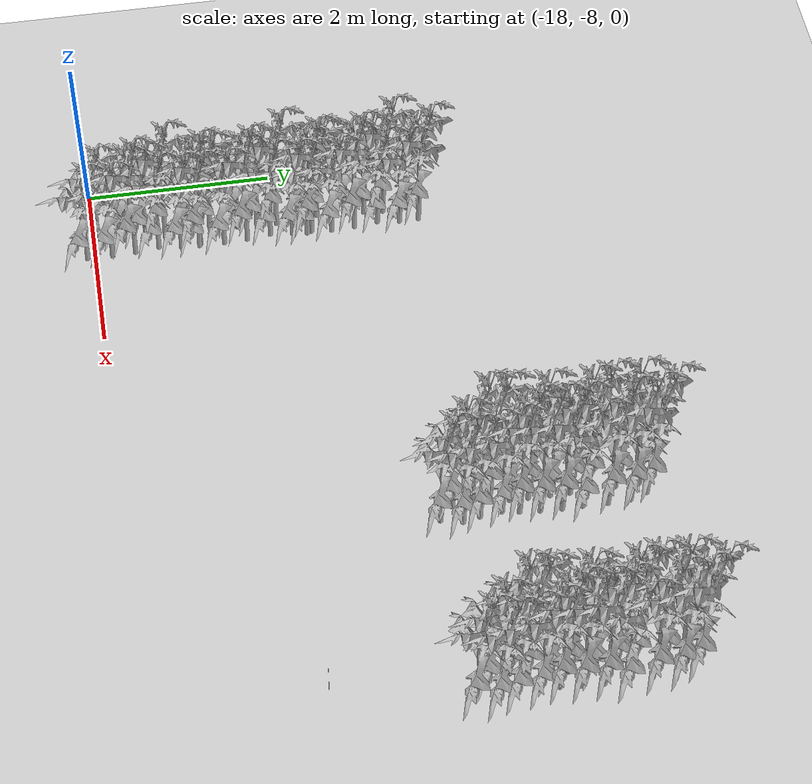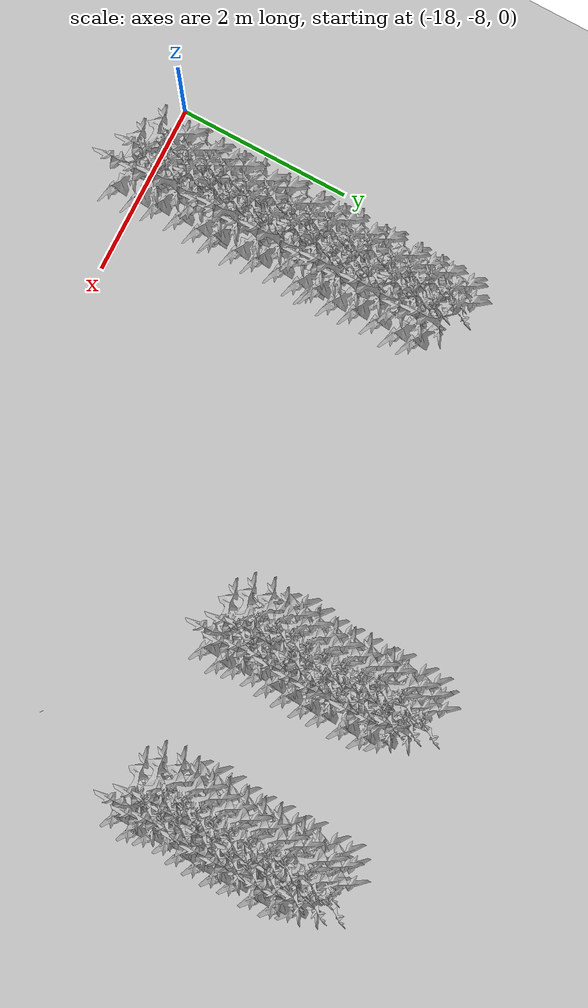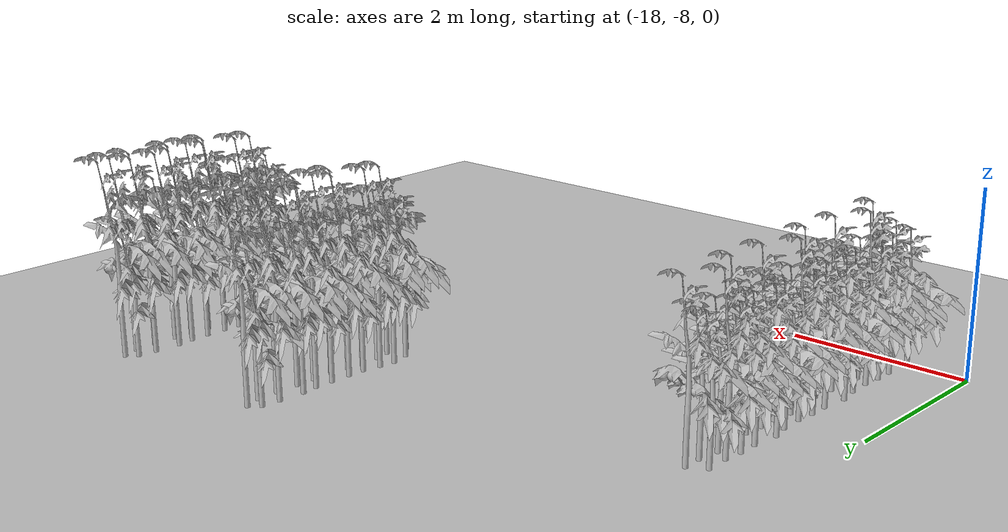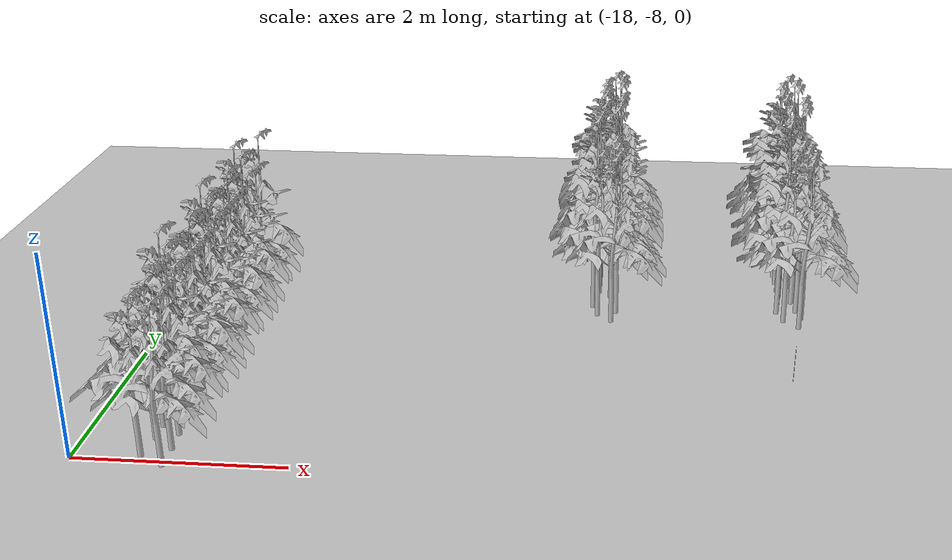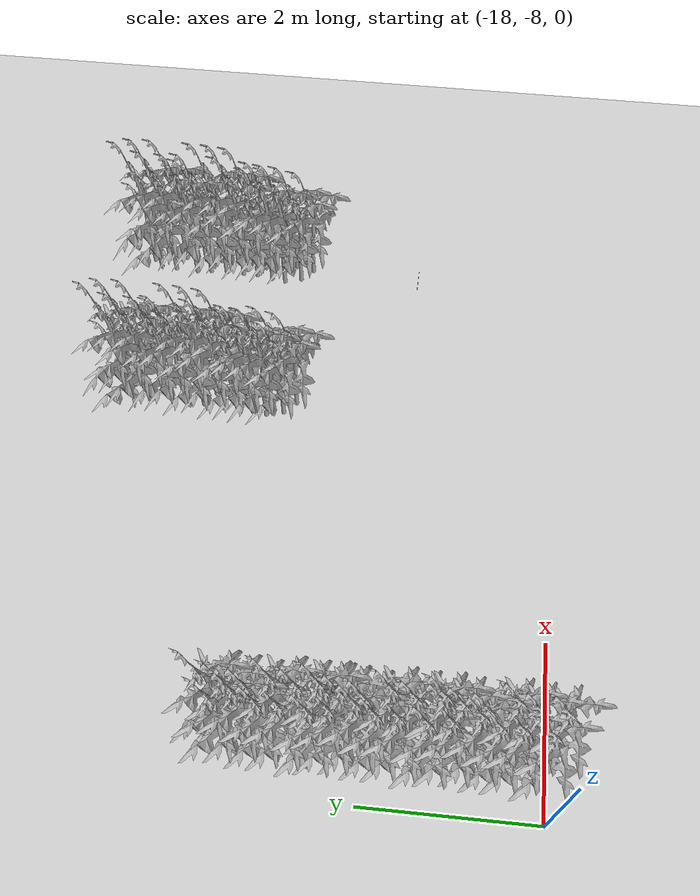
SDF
<sdf version="1.6">
 <world name="default">
  <model name="ground_plane">
   <static>1</static>
   <link name="link">
    <collision name="collision">
     <geometry><plane><normal>0 0 1</normal><size>100 100</size></plane></geometry>
     <surface>
      <contact><collide_bitmask>65535</collide_bitmask></contact>
      <friction><ode><mu>100</mu><mu2>50</mu2></ode></friction>
     </surface>
    </collision>
    <visual name="visual">
     <cast_shadows>0</cast_shadows>
     <geometry><plane><normal>0 0 1</normal><size>100 100</size></plane></geometry>
     <material>
      <script><uri>file://media/materials/scripts/gazebo.material</uri><name>Gazebo/Grey</name></script>
     </material>
    </visual>
   </link>
  </model>
  <model name="Front_Plant_1_5">
   <model name="tomato_plant_medium">
    <static>1</static>
    <link name="link">
     <collision name="collision">
      <pose>0 0 0 1.5708 -0 0</pose>
      <geometry><mesh><scale>0.5 0.5 0.5</scale><uri>model://stick/meshes/stick.dae</uri></mesh></geometry>
     </collision>
     <visual name="visual">
      <geometry>
       <mesh><scale>5e-06 5e-06 6e-06</scale><uri>model://tomato_plant_medium/meshes/tomato-plant.dae</uri></mesh>
      </geometry>
     </visual>
    </link>
    <pose>0.087453 -0.595994 0.012396 0 -0 0</pose>
   </model>
   <model name="tomato_plant_medium_0">
    <static>1</static>
    <link name="link">
     <collision name="collision">
      <pose>0 0 0 1.5708 -0 0</pose>
      <geometry><mesh><scale>0.5 0.5 0.5</scale><uri>model://stick/meshes/stick.dae</uri></mesh></geometry>
     </collision>
     <visual name="visual">
      <geometry>
       <mesh><scale>5e-06 5e-06 6e-06</scale><uri>model://tomato_plant_medium/meshes/tomato-plant.dae</uri></mesh>
      </geometry>
     </visual>
    </link>
    <pose>-0.086166 -0.251822 0.012396 0 -0 0</pose>
   </model>
   <model name="tomato_plant_medium_1">
    <static>1</static>
    <link name="link">
     <collision name="collision">
      <pose>0 0 0 1.5708 -0 0</pose>
      <geometry><mesh><scale>0.5 0.5 0.5</scale><uri>model://stick/meshes/stick.dae</uri></mesh></geometry>
     </collision>
     <visual name="visual">
      <geometry>
       <mesh><scale>5e-06 5e-06 6e-06</scale><uri>model://tomato_plant_medium/meshes/tomato-plant.dae</uri></mesh>
      </geometry>
     </visual>
    </link>
    <pose>0.080199 0.118127 0.012396 0 -0 0</pose>
   </model>
   <model name="tomato_plant_small">
    <static>1</static>
    <link name="link">
     <collision name="collision">
      <pose>0 0 0 1.5708 -0 0</pose>
      <geometry><mesh><scale>0.5 0.45 0.5</scale><uri>model://stick/meshes/stick.dae</uri></mesh></geometry>
     </collision>
     <visual name="visual">
      <geometry>
       <mesh><scale>5e-06 5e-06 5e-06</scale><uri>model://tomato_plant_small/meshes/tomato-plant.dae</uri></mesh>
      </geometry>
     </visual>
    </link>
    <pose>0.099683 -1.12011 0.012396 0 -0 0</pose>
   </model>
   <model name="tomato_plant_small_0">
    <static>1</static>
    <link name="link">
     <collision name="collision">
      <pose>0 0 0 1.5708 -0 0</pose>
      <geometry><mesh><scale>0.5 0.45 0.5</scale><uri>model://stick/meshes/stick.dae</uri></mesh></geometry>
     </collision>
     <visual name="visual">
      <geometry>
       <mesh><scale>5e-06 5e-06 5e-06</scale><uri>model://tomato_plant_small/meshes/tomato-plant.dae</uri></mesh>
      </geometry>
     </visual>
    </link>
    <pose>-0.138771 -0.983982 0.012396 0 -0 0</pose>
   </model>
   <model name="tomato_plant_small_1">
    <static>1</static>
    <link name="link">
     <collision name="collision">
      <pose>0 0 0 1.5708 -0 0</pose>
      <geometry><mesh><scale>0.5 0.45 0.5</scale><uri>model://stick/meshes/stick.dae</uri></mesh></geometry>
     </collision>
     <visual name="visual">
      <geometry>
       <mesh><scale>5e-06 5e-06 5e-06</scale><uri>model://tomato_plant_small/meshes/tomato-plant.dae</uri></mesh>
      </geometry>
     </visual>
    </link>
    <pose>0.101334 -0.848814 0.012396 0 -0 0</pose>
   </model>
   <model name="tomato_plant_small_2">
    <static>1</static>
    <link name="link">
     <collision name="collision">
      <pose>0 0 0 1.5708 -0 0</pose>
      <geometry><mesh><scale>0.5 0.45 0.5</scale><uri>model://stick/meshes/stick.dae</uri></mesh></geometry>
     </collision>
     <visual name="visual">
      <geometry>
       <mesh><scale>5e-06 5e-06 5e-06</scale><uri>model://tomato_plant_small/meshes/tomato-plant.dae</uri></mesh>
      </geometry>
     </visual>
    </link>
    <pose>-0.103369 -0.683189 0.012396 0 -0 0</pose>
   </model>
   <model name="tomato_plant_small_3">
    <static>1</static>
    <link name="link">
     <collision name="collision">
      <pose>0 0 0 1.5708 -0 0</pose>
      <geometry><mesh><scale>0.5 0.45 0.5</scale><uri>model://stick/meshes/stick.dae</uri></mesh></geometry>
     </collision>
     <visual name="visual">
      <geometry>
       <mesh><scale>5e-06 5e-06 5e-06</scale><uri>model://tomato_plant_small/meshes/tomato-plant.dae</uri></mesh>
      </geometry>
     </visual>
    </link>
    <pose>-0.104381 -0.464811 0.012396 0 -0 0</pose>
   </model>
   <model name="tomato_plant_small_4">
    <static>1</static>
    <link name="link">
     <collision name="collision">
      <pose>0 0 0 1.5708 -0 0</pose>
      <geometry><mesh><scale>0.5 0.45 0.5</scale><uri>model://stick/meshes/stick.dae</uri></mesh></geometry>
     </collision>
     <visual name="visual">
      <geometry>
       <mesh><scale>5e-06 5e-06 5e-06</scale><uri>model://tomato_plant_small/meshes/tomato-plant.dae</uri></mesh>
      </geometry>
     </visual>
    </link>
    <pose>0.055604 -0.336879 0.012396 0 -0 0</pose>
   </model>
   <model name="tomato_plant_small_5">
    <static>1</static>
    <link name="link">
     <collision name="collision">
      <pose>0 0 0 1.5708 -0 0</pose>
      <geometry><mesh><scale>0.5 0.45 0.5</scale><uri>model://stick/meshes/stick.dae</uri></mesh></geometry>
     </collision>
     <visual name="visual">
      <geometry>
       <mesh><scale>5e-06 5e-06 5e-06</scale><uri>model://tomato_plant_small/meshes/tomato-plant.dae</uri></mesh>
      </geometry>
     </visual>
    </link>
    <pose>0.085059 -0.092572 0.012396 0 -0 0</pose>
   </model>
   <model name="tomato_plant_small_6">
    <static>1</static>
    <link name="link">
     <collision name="collision">
      <pose>0 0 0 1.5708 -0 0</pose>
      <geometry><mesh><scale>0.5 0.45 0.5</scale><uri>model://stick/meshes/stick.dae</uri></mesh></geometry>
     </collision>
     <visual name="visual">
      <geometry>
       <mesh><scale>5e-06 5e-06 5e-06</scale><uri>model://tomato_plant_small/meshes/tomato-plant.dae</uri></mesh>
      </geometry>
     </visual>
    </link>
    <pose>-0.096345 0.008888 0.012396 0 -0 0</pose>
   </model>
   <static>0</static>
   <pose>-17.2096 -6.97996 0 0 -0 0</pose>
  </model>
  <model name="Front_Plant_1_6">
   <model name="tomato_plant_medium">
    <static>1</static>
    <link name="link">
     <collision name="collision">
      <pose>0 0 0 1.5708 -0 0</pose>
      <geometry><mesh><scale>0.5 0.5 0.5</scale><uri>model://stick/meshes/stick.dae</uri></mesh></geometry>
     </collision>
     <visual name="visual">
      <geometry>
       <mesh><scale>5e-06 5e-06 6e-06</scale><uri>model://tomato_plant_medium/meshes/tomato-plant.dae</uri></mesh>
      </geometry>
     </visual>
    </link>
    <pose>0.087453 -0.595994 0.012396 0 -0 0</pose>
   </model>
   <model name="tomato_plant_medium_0">
    <static>1</static>
    <link name="link">
     <collision name="collision">
      <pose>0 0 0 1.5708 -0 0</pose>
      <geometry><mesh><scale>0.5 0.5 0.5</scale><uri>model://stick/meshes/stick.dae</uri></mesh></geometry>
     </collision>
     <visual name="visual">
      <geometry>
       <mesh><scale>5e-06 5e-06 6e-06</scale><uri>model://tomato_plant_medium/meshes/tomato-plant.dae</uri></mesh>
      </geometry>
     </visual>
    </link>
    <pose>-0.086166 -0.251822 0.012396 0 -0 0</pose>
   </model>
   <model name="tomato_plant_medium_1">
    <static>1</static>
    <link name="link">
     <collision name="collision">
      <pose>0 0 0 1.5708 -0 0</pose>
      <geometry><mesh><scale>0.5 0.5 0.5</scale><uri>model://stick/meshes/stick.dae</uri></mesh></geometry>
     </collision>
     <visual name="visual">
      <geometry>
       <mesh><scale>5e-06 5e-06 6e-06</scale><uri>model://tomato_plant_medium/meshes/tomato-plant.dae</uri></mesh>
      </geometry>
     </visual>
    </link>
    <pose>0.080199 0.118127 0.012396 0 -0 0</pose>
   </model>
   <model name="tomato_plant_small">
    <static>1</static>
    <link name="link">
     <collision name="collision">
      <pose>0 0 0 1.5708 -0 0</pose>
      <geometry><mesh><scale>0.5 0.45 0.5</scale><uri>model://stick/meshes/stick.dae</uri></mesh></geometry>
     </collision>
     <visual name="visual">
      <geometry>
       <mesh><scale>5e-06 5e-06 5e-06</scale><uri>model://tomato_plant_small/meshes/tomato-plant.dae</uri></mesh>
      </geometry>
     </visual>
    </link>
    <pose>0.099683 -1.12011 0.012396 0 -0 0</pose>
   </model>
   <model name="tomato_plant_small_0">
    <static>1</static>
    <link name="link">
     <collision name="collision">
      <pose>0 0 0 1.5708 -0 0</pose>
      <geometry><mesh><scale>0.5 0.45 0.5</scale><uri>model://stick/meshes/stick.dae</uri></mesh></geometry>
     </collision>
     <visual name="visual">
      <geometry>
       <mesh><scale>5e-06 5e-06 5e-06</scale><uri>model://tomato_plant_small/meshes/tomato-plant.dae</uri></mesh>
      </geometry>
     </visual>
    </link>
    <pose>-0.138771 -0.983982 0.012396 0 -0 0</pose>
   </model>
   <model name="tomato_plant_small_1">
    <static>1</static>
    <link name="link">
     <collision name="collision">
      <pose>0 0 0 1.5708 -0 0</pose>
      <geometry><mesh><scale>0.5 0.45 0.5</scale><uri>model://stick/meshes/stick.dae</uri></mesh></geometry>
     </collision>
     <visual name="visual">
      <geometry>
       <mesh><scale>5e-06 5e-06 5e-06</scale><uri>model://tomato_plant_small/meshes/tomato-plant.dae</uri></mesh>
      </geometry>
     </visual>
    </link>
    <pose>0.101334 -0.848814 0.012396 0 -0 0</pose>
   </model>
   <model name="tomato_plant_small_2">
    <static>1</static>
    <link name="link">
     <collision name="collision">
      <pose>0 0 0 1.5708 -0 0</pose>
      <geometry><mesh><scale>0.5 0.45 0.5</scale><uri>model://stick/meshes/stick.dae</uri></mesh></geometry>
     </collision>
     <visual name="visual">
      <geometry>
       <mesh><scale>5e-06 5e-06 5e-06</scale><uri>model://tomato_plant_small/meshes/tomato-plant.dae</uri></mesh>
      </geometry>
     </visual>
    </link>
    <pose>-0.103369 -0.683189 0.012396 0 -0 0</pose>
   </model>
   <model name="tomato_plant_small_3">
    <static>1</static>
    <link name="link">
     <collision name="collision">
      <pose>0 0 0 1.5708 -0 0</pose>
      <geometry><mesh><scale>0.5 0.45 0.5</scale><uri>model://stick/meshes/stick.dae</uri></mesh></geometry>
     </collision>
     <visual name="visual">
      <geometry>
       <mesh><scale>5e-06 5e-06 5e-06</scale><uri>model://tomato_plant_small/meshes/tomato-plant.dae</uri></mesh>
      </geometry>
     </visual>
    </link>
    <pose>-0.104381 -0.464811 0.012396 0 -0 0</pose>
   </model>
   <model name="tomato_plant_small_4">
    <static>1</static>
    <link name="link">
     <collision name="collision">
      <pose>0 0 0 1.5708 -0 0</pose>
      <geometry><mesh><scale>0.5 0.45 0.5</scale><uri>model://stick/meshes/stick.dae</uri></mesh></geometry>
     </collision>
     <visual name="visual">
      <geometry>
       <mesh><scale>5e-06 5e-06 5e-06</scale><uri>model://tomato_plant_small/meshes/tomato-plant.dae</uri></mesh>
      </geometry>
     </visual>
    </link>
    <pose>0.055604 -0.336879 0.012396 0 -0 0</pose>
   </model>
   <model name="tomato_plant_small_5">
    <static>1</static>
    <link name="link">
     <collision name="collision">
      <pose>0 0 0 1.5708 -0 0</pose>
      <geometry><mesh><scale>0.5 0.45 0.5</scale><uri>model://stick/meshes/stick.dae</uri></mesh></geometry>
     </collision>
     <visual name="visual">
      <geometry>
       <mesh><scale>5e-06 5e-06 5e-06</scale><uri>model://tomato_plant_small/meshes/tomato-plant.dae</uri></mesh>
      </geometry>
     </visual>
    </link>
    <pose>0.085059 -0.092572 0.012396 0 -0 0</pose>
   </model>
   <model name="tomato_plant_small_6">
    <static>1</static>
    <link name="link">
     <collision name="collision">
      <pose>0 0 0 1.5708 -0 0</pose>
      <geometry><mesh><scale>0.5 0.45 0.5</scale><uri>model://stick/meshes/stick.dae</uri></mesh></geometry>
     </collision>
     <visual name="visual">
      <geometry>
       <mesh><scale>5e-06 5e-06 5e-06</scale><uri>model://tomato_plant_small/meshes/tomato-plant.dae</uri></mesh>
      </geometry>
     </visual>
    </link>
    <pose>-0.096345 0.008888 0.012396 0 -0 0</pose>
   </model>
   <static>0</static>
   <pose>-17.2096 -5.75271 0 0 -0 0</pose>
  </model>
  <model name="Front_Plant_1_7">
   <model name="tomato_plant_medium">
    <static>1</static>
    <link name="link">
     <collision name="collision">
      <pose>0 0 0 1.5708 -0 0</pose>
      <geometry><mesh><scale>0.5 0.5 0.5</scale><uri>model://stick/meshes/stick.dae</uri></mesh></geometry>
     </collision>
     <visual name="visual">
      <geometry>
       <mesh><scale>5e-06 5e-06 6e-06</scale><uri>model://tomato_plant_medium/meshes/tomato-plant.dae</uri></mesh>
      </geometry>
     </visual>
    </link>
    <pose>0.087453 -0.595994 0.012396 0 -0 0</pose>
   </model>
   <model name="tomato_plant_medium_0">
    <static>1</static>
    <link name="link">
     <collision name="collision">
      <pose>0 0 0 1.5708 -0 0</pose>
      <geometry><mesh><scale>0.5 0.5 0.5</scale><uri>model://stick/meshes/stick.dae</uri></mesh></geometry>
     </collision>
     <visual name="visual">
      <geometry>
       <mesh><scale>5e-06 5e-06 6e-06</scale><uri>model://tomato_plant_medium/meshes/tomato-plant.dae</uri></mesh>
      </geometry>
     </visual>
    </link>
    <pose>-0.086166 -0.251822 0.012396 0 -0 0</pose>
   </model>
   <model name="tomato_plant_medium_1">
    <static>1</static>
    <link name="link">
     <collision name="collision">
      <pose>0 0 0 1.5708 -0 0</pose>
      <geometry><mesh><scale>0.5 0.5 0.5</scale><uri>model://stick/meshes/stick.dae</uri></mesh></geometry>
     </collision>
     <visual name="visual">
      <geometry>
       <mesh><scale>5e-06 5e-06 6e-06</scale><uri>model://tomato_plant_medium/meshes/tomato-plant.dae</uri></mesh>
      </geometry>
     </visual>
    </link>
    <pose>0.080199 0.118127 0.012396 0 -0 0</pose>
   </model>
   <model name="tomato_plant_small">
    <static>1</static>
    <link name="link">
     <collision name="collision">
      <pose>0 0 0 1.5708 -0 0</pose>
      <geometry><mesh><scale>0.5 0.45 0.5</scale><uri>model://stick/meshes/stick.dae</uri></mesh></geometry>
     </collision>
     <visual name="visual">
      <geometry>
       <mesh><scale>5e-06 5e-06 5e-06</scale><uri>model://tomato_plant_small/meshes/tomato-plant.dae</uri></mesh>
      </geometry>
     </visual>
    </link>
    <pose>0.099683 -1.12011 0.012396 0 -0 0</pose>
   </model>
   <model name="tomato_plant_small_0">
    <static>1</static>
    <link name="link">
     <collision name="collision">
      <pose>0 0 0 1.5708 -0 0</pose>
      <geometry><mesh><scale>0.5 0.45 0.5</scale><uri>model://stick/meshes/stick.dae</uri></mesh></geometry>
     </collision>
     <visual name="visual">
      <geometry>
       <mesh><scale>5e-06 5e-06 5e-06</scale><uri>model://tomato_plant_small/meshes/tomato-plant.dae</uri></mesh>
      </geometry>
     </visual>
    </link>
    <pose>-0.138771 -0.983982 0.012396 0 -0 0</pose>
   </model>
   <model name="tomato_plant_small_1">
    <static>1</static>
    <link name="link">
     <collision name="collision">
      <pose>0 0 0 1.5708 -0 0</pose>
      <geometry><mesh><scale>0.5 0.45 0.5</scale><uri>model://stick/meshes/stick.dae</uri></mesh></geometry>
     </collision>
     <visual name="visual">
      <geometry>
       <mesh><scale>5e-06 5e-06 5e-06</scale><uri>model://tomato_plant_small/meshes/tomato-plant.dae</uri></mesh>
      </geometry>
     </visual>
    </link>
    <pose>0.101334 -0.848814 0.012396 0 -0 0</pose>
   </model>
   <model name="tomato_plant_small_2">
    <static>1</static>
    <link name="link">
     <collision name="collision">
      <pose>0 0 0 1.5708 -0 0</pose>
      <geometry><mesh><scale>0.5 0.45 0.5</scale><uri>model://stick/meshes/stick.dae</uri></mesh></geometry>
     </collision>
     <visual name="visual">
      <geometry>
       <mesh><scale>5e-06 5e-06 5e-06</scale><uri>model://tomato_plant_small/meshes/tomato-plant.dae</uri></mesh>
      </geometry>
     </visual>
    </link>
    <pose>-0.103369 -0.683189 0.012396 0 -0 0</pose>
   </model>
   <model name="tomato_plant_small_3">
    <static>1</static>
    <link name="link">
     <collision name="collision">
      <pose>0 0 0 1.5708 -0 0</pose>
      <geometry><mesh><scale>0.5 0.45 0.5</scale><uri>model://stick/meshes/stick.dae</uri></mesh></geometry>
     </collision>
     <visual name="visual">
      <geometry>
       <mesh><scale>5e-06 5e-06 5e-06</scale><uri>model://tomato_plant_small/meshes/tomato-plant.dae</uri></mesh>
      </geometry>
     </visual>
    </link>
    <pose>-0.104381 -0.464811 0.012396 0 -0 0</pose>
   </model>
   <model name="tomato_plant_small_4">
    <static>1</static>
    <link name="link">
     <collision name="collision">
      <pose>0 0 0 1.5708 -0 0</pose>
      <geometry><mesh><scale>0.5 0.45 0.5</scale><uri>model://stick/meshes/stick.dae</uri></mesh></geometry>
     </collision>
     <visual name="visual">
      <geometry>
       <mesh><scale>5e-06 5e-06 5e-06</scale><uri>model://tomato_plant_small/meshes/tomato-plant.dae</uri></mesh>
      </geometry>
     </visual>
    </link>
    <pose>0.055604 -0.336879 0.012396 0 -0 0</pose>
   </model>
   <model name="tomato_plant_small_5">
    <static>1</static>
    <link name="link">
     <collision name="collision">
      <pose>0 0 0 1.5708 -0 0</pose>
      <geometry><mesh><scale>0.5 0.45 0.5</scale><uri>model://stick/meshes/stick.dae</uri></mesh></geometry>
     </collision>
     <visual name="visual">
      <geometry>
       <mesh><scale>5e-06 5e-06 5e-06</scale><uri>model://tomato_plant_small/meshes/tomato-plant.dae</uri></mesh>
      </geometry>
     </visual>
    </link>
    <pose>0.085059 -0.092572 0.012396 0 -0 0</pose>
   </model>
   <model name="tomato_plant_small_6">
    <static>1</static>
    <link name="link">
     <collision name="collision">
      <pose>0 0 0 1.5708 -0 0</pose>
      <geometry><mesh><scale>0.5 0.45 0.5</scale><uri>model://stick/meshes/stick.dae</uri></mesh></geometry>
     </collision>
     <visual name="visual">
      <geometry>
       <mesh><scale>5e-06 5e-06 5e-06</scale><uri>model://tomato_plant_small/meshes/tomato-plant.dae</uri></mesh>
      </geometry>
     </visual>
    </link>
    <pose>-0.096345 0.008888 0.012396 0 -0 0</pose>
   </model>
   <static>0</static>
   <pose>-17.2096 -4.56415 0 0 -0 0</pose>
  </model>
  <model name="MIddle_Plant_1_0">
   <model name="tomato_plant_big">
    <static>1</static>
    <link name="link">
     <collision name="collision">
      <pose>0 0 0 1.5708 -0 0</pose>
      <geometry><mesh><scale>0.5 0.6 0.5</scale><uri>model://stick/meshes/stick.dae</uri></mesh></geometry>
     </collision>
     <visual name="visual">
      <geometry>
       <mesh><scale>5e-06 5e-06 7e-06</scale><uri>model://tomato_plant_big/meshes/tomato-plant.dae</uri></mesh>
      </geometry>
     </visual>
    </link>
    <pose>-0.144318 -0.693607 -0 0 -0 0</pose>
   </model>
   <model name="tomato_plant_big_0">
    <static>1</static>
    <link name="link">
     <collision name="collision">
      <pose>0 0 0 1.5708 -0 0</pose>
      <geometry><mesh><scale>0.5 0.6 0.5</scale><uri>model://stick/meshes/stick.dae</uri></mesh></geometry>
     </collision>
     <visual name="visual">
      <geometry>
       <mesh><scale>5e-06 5e-06 7e-06</scale><uri>model://tomato_plant_big/meshes/tomato-plant.dae</uri></mesh>
      </geometry>
     </visual>
    </link>
    <pose>-0.11784 -0.519827 0 0 -0 0</pose>
   </model>
   <model name="tomato_plant_big_1">
    <static>1</static>
    <link name="link">
     <collision name="collision">
      <pose>0 0 0 1.5708 -0 0</pose>
      <geometry><mesh><scale>0.5 0.6 0.5</scale><uri>model://stick/meshes/stick.dae</uri></mesh></geometry>
     </collision>
     <visual name="visual">
      <geometry>
       <mesh><scale>5e-06 5e-06 7e-06</scale><uri>model://tomato_plant_big/meshes/tomato-plant.dae</uri></mesh>
      </geometry>
     </visual>
    </link>
    <pose>0.073755 -0.247584 0 0 -0 0</pose>
   </model>
   <model name="tomato_plant_big_10">
    <static>1</static>
    <link name="link">
     <collision name="collision">
      <pose>0 0 0 1.5708 -0 0</pose>
      <geometry><mesh><scale>0.5 0.6 0.5</scale><uri>model://stick/meshes/stick.dae</uri></mesh></geometry>
     </collision>
     <visual name="visual">
      <geometry>
       <mesh><scale>5e-06 5e-06 7e-06</scale><uri>model://tomato_plant_big/meshes/tomato-plant.dae</uri></mesh>
      </geometry>
     </visual>
    </link>
    <pose>0.037052 1.07094 0 0 -0 0</pose>
   </model>
   <model name="tomato_plant_big_2">
    <static>1</static>
    <link name="link">
     <collision name="collision">
      <pose>0 0 0 1.5708 -0 0</pose>
      <geometry><mesh><scale>0.5 0.6 0.5</scale><uri>model://stick/meshes/stick.dae</uri></mesh></geometry>
     </collision>
     <visual name="visual">
      <geometry>
       <mesh><scale>5e-06 5e-06 7e-06</scale><uri>model://tomato_plant_big/meshes/tomato-plant.dae</uri></mesh>
      </geometry>
     </visual>
    </link>
    <pose>-0.076926 -0.131165 0 0 -0 0</pose>
   </model>
   <model name="tomato_plant_big_3">
    <static>1</static>
    <link name="link">
     <collision name="collision">
      <pose>0 0 0 1.5708 -0 0</pose>
      <geometry><mesh><scale>0.5 0.6 0.5</scale><uri>model://stick/meshes/stick.dae</uri></mesh></geometry>
     </collision>
     <visual name="visual">
      <geometry>
       <mesh><scale>5e-06 5e-06 7e-06</scale><uri>model://tomato_plant_big/meshes/tomato-plant.dae</uri></mesh>
      </geometry>
     </visual>
    </link>
    <pose>0.093714 -0.038386 0 0 -0 0</pose>
   </model>
   <model name="tomato_plant_big_4">
    <static>1</static>
    <link name="link">
     <collision name="collision">
      <pose>0 0 0 1.5708 -0 0</pose>
      <geometry><mesh><scale>0.5 0.6 0.5</scale><uri>model://stick/meshes/stick.dae</uri></mesh></geometry>
     </collision>
     <visual name="visual">
      <geometry>
       <mesh><scale>5e-06 5e-06 7e-06</scale><uri>model://tomato_plant_big/meshes/tomato-plant.dae</uri></mesh>
      </geometry>
     </visual>
    </link>
    <pose>0.103117 0.184356 0 0 -0 0</pose>
   </model>
   <model name="tomato_plant_big_5">
    <static>1</static>
    <link name="link">
     <collision name="collision">
      <pose>0 0 0 1.5708 -0 0</pose>
      <geometry><mesh><scale>0.5 0.6 0.5</scale><uri>model://stick/meshes/stick.dae</uri></mesh></geometry>
     </collision>
     <visual name="visual">
      <geometry>
       <mesh><scale>5e-06 5e-06 7e-06</scale><uri>model://tomato_plant_big/meshes/tomato-plant.dae</uri></mesh>
      </geometry>
     </visual>
    </link>
    <pose>-0.074883 0.301479 0 0 -0 0</pose>
   </model>
   <model name="tomato_plant_big_6">
    <static>1</static>
    <link name="link">
     <collision name="collision">
      <pose>0 0 0 1.5708 -0 0</pose>
      <geometry><mesh><scale>0.5 0.6 0.5</scale><uri>model://stick/meshes/stick.dae</uri></mesh></geometry>
     </collision>
     <visual name="visual">
      <geometry>
       <mesh><scale>5e-06 5e-06 7e-06</scale><uri>model://tomato_plant_big/meshes/tomato-plant.dae</uri></mesh>
      </geometry>
     </visual>
    </link>
    <pose>-0.096921 0.484007 0 0 -0 0</pose>
   </model>
   <model name="tomato_plant_big_7">
    <static>1</static>
    <link name="link">
     <collision name="collision">
      <pose>0 0 0 1.5708 -0 0</pose>
      <geometry><mesh><scale>0.5 0.6 0.5</scale><uri>model://stick/meshes/stick.dae</uri></mesh></geometry>
     </collision>
     <visual name="visual">
      <geometry>
       <mesh><scale>5e-06 5e-06 7e-06</scale><uri>model://tomato_plant_big/meshes/tomato-plant.dae</uri></mesh>
      </geometry>
     </visual>
    </link>
    <pose>0.107491 0.653976 0 0 -0 0</pose>
   </model>
   <model name="tomato_plant_big_8">
    <static>1</static>
    <link name="link">
     <collision name="collision">
      <pose>0 0 0 1.5708 -0 0</pose>
      <geometry><mesh><scale>0.5 0.6 0.5</scale><uri>model://stick/meshes/stick.dae</uri></mesh></geometry>
     </collision>
     <visual name="visual">
      <geometry>
       <mesh><scale>5e-06 5e-06 7e-06</scale><uri>model://tomato_plant_big/meshes/tomato-plant.dae</uri></mesh>
      </geometry>
     </visual>
    </link>
    <pose>-0.07985 0.768549 0 0 -0 0</pose>
   </model>
   <model name="tomato_plant_big_9">
    <static>1</static>
    <link name="link">
     <collision name="collision">
      <pose>0 0 0 1.5708 -0 0</pose>
      <geometry><mesh><scale>0.5 0.6 0.5</scale><uri>model://stick/meshes/stick.dae</uri></mesh></geometry>
     </collision>
     <visual name="visual">
      <geometry>
       <mesh><scale>5e-06 5e-06 7e-06</scale><uri>model://tomato_plant_big/meshes/tomato-plant.dae</uri></mesh>
      </geometry>
     </visual>
    </link>
    <pose>0.098361 0.890852 0 0 -0 0</pose>
   </model>
   <model name="tomato_plant_medium">
    <static>1</static>
    <link name="link">
     <collision name="collision">
      <pose>0 0 0 1.5708 -0 0</pose>
      <geometry><mesh><scale>0.5 0.5 0.5</scale><uri>model://stick/meshes/stick.dae</uri></mesh></geometry>
     </collision>
     <visual name="visual">
      <geometry>
       <mesh><scale>5e-06 5e-06 6e-06</scale><uri>model://tomato_plant_medium/meshes/tomato-plant.dae</uri></mesh>
      </geometry>
     </visual>
    </link>
    <pose>0.056913 -1.05328 0 0 -0 0</pose>
   </model>
   <model name="tomato_plant_medium_0">
    <static>1</static>
    <link name="link">
     <collision name="collision">
      <pose>0 0 0 1.5708 -0 0</pose>
      <geometry><mesh><scale>0.5 0.5 0.5</scale><uri>model://stick/meshes/stick.dae</uri></mesh></geometry>
     </collision>
     <visual name="visual">
      <geometry>
       <mesh><scale>5e-06 5e-06 6e-06</scale><uri>model://tomato_plant_medium/meshes/tomato-plant.dae</uri></mesh>
      </geometry>
     </visual>
    </link>
    <pose>-0.092719 -0.905729 0 0 -0 0</pose>
   </model>
   <model name="tomato_plant_medium_1">
    <static>1</static>
    <link name="link">
     <collision name="collision">
      <pose>0 0 0 1.5708 -0 0</pose>
      <geometry><mesh><scale>0.5 0.5 0.5</scale><uri>model://stick/meshes/stick.dae</uri></mesh></geometry>
     </collision>
     <visual name="visual">
      <geometry>
       <mesh><scale>5e-06 5e-06 6e-06</scale><uri>model://tomato_plant_medium/meshes/tomato-plant.dae</uri></mesh>
      </geometry>
     </visual>
    </link>
    <pose>0.108962 -0.829637 0 0 -0 0</pose>
   </model>
   <model name="tomato_plant_medium_2">
    <static>1</static>
    <link name="link">
     <collision name="collision">
      <pose>0 0 0 1.5708 -0 0</pose>
      <geometry><mesh><scale>0.5 0.5 0.5</scale><uri>model://stick/meshes/stick.dae</uri></mesh></geometry>
     </collision>
     <visual name="visual">
      <geometry>
       <mesh><scale>5e-06 5e-06 6e-06</scale><uri>model://tomato_plant_medium/meshes/tomato-plant.dae</uri></mesh>
      </geometry>
     </visual>
    </link>
    <pose>0.071216 -0.652507 0 0 -0 0</pose>
   </model>
   <model name="tomato_plant_medium_3">
    <static>1</static>
    <link name="link">
     <collision name="collision">
      <pose>0 0 0 1.5708 -0 0</pose>
      <geometry><mesh><scale>0.5 0.5 0.5</scale><uri>model://stick/meshes/stick.dae</uri></mesh></geometry>
     </collision>
     <visual name="visual">
      <geometry>
       <mesh><scale>5e-06 5e-06 6e-06</scale><uri>model://tomato_plant_medium/meshes/tomato-plant.dae</uri></mesh>
      </geometry>
     </visual>
    </link>
    <pose>0.047335 -0.423046 0 0 -0 0</pose>
   </model>
   <model name="tomato_plant_medium_4">
    <static>1</static>
    <link name="link">
     <collision name="collision">
      <pose>0 0 0 1.5708 -0 0</pose>
      <geometry><mesh><scale>0.5 0.5 0.5</scale><uri>model://stick/meshes/stick.dae</uri></mesh></geometry>
     </collision>
     <visual name="visual">
      <geometry>
       <mesh><scale>5e-06 5e-06 6e-06</scale><uri>model://tomato_plant_medium/meshes/tomato-plant.dae</uri></mesh>
      </geometry>
     </visual>
    </link>
    <pose>-0.081012 -0.320324 0 0 -0 0</pose>
   </model>
   <model name="tomato_plant_medium_5">
    <static>1</static>
    <link name="link">
     <collision name="collision">
      <pose>0 0 0 1.5708 -0 0</pose>
      <geometry><mesh><scale>0.5 0.5 0.5</scale><uri>model://stick/meshes/stick.dae</uri></mesh></geometry>
     </collision>
     <visual name="visual">
      <geometry>
       <mesh><scale>5e-06 5e-06 6e-06</scale><uri>model://tomato_plant_medium/meshes/tomato-plant.dae</uri></mesh>
      </geometry>
     </visual>
    </link>
    <pose>-0.07452 0.095988 0 0 -0 0</pose>
   </model>
   <model name="tomato_plant_medium_6">
    <static>1</static>
    <link name="link">
     <collision name="collision">
      <pose>0 0 0 1.5708 -0 0</pose>
      <geometry><mesh><scale>0.5 0.5 0.5</scale><uri>model://stick/meshes/stick.dae</uri></mesh></geometry>
     </collision>
     <visual name="visual">
      <geometry>
       <mesh><scale>5e-06 5e-06 6e-06</scale><uri>model://tomato_plant_medium/meshes/tomato-plant.dae</uri></mesh>
      </geometry>
     </visual>
    </link>
    <pose>0.101424 0.395443 0 0 -0 0</pose>
   </model>
   <model name="tomato_plant_small">
    <static>1</static>
    <link name="link">
     <collision name="collision">
      <pose>0 0 0 1.5708 -0 0</pose>
      <geometry><mesh><scale>0.5 0.45 0.5</scale><uri>model://stick/meshes/stick.dae</uri></mesh></geometry>
     </collision>
     <visual name="visual">
      <geometry>
       <mesh><scale>5e-06 5e-06 5e-06</scale><uri>model://tomato_plant_small/meshes/tomato-plant.dae</uri></mesh>
      </geometry>
     </visual>
    </link>
    <pose>-0.060351 0.969512 0 0 -0 0</pose>
   </model>
   <static>0</static>
   <pose>-13.2267 -3.826 0 0 -0 0</pose>
  </model>
  <model name="MIddle_Plant_1_0_clone">
   <model name="tomato_plant_big">
    <static>1</static>
    <link name="link">
     <collision name="collision">
      <pose>0 0 0 1.5708 -0 0</pose>
      <geometry><mesh><scale>0.5 0.6 0.5</scale><uri>model://stick/meshes/stick.dae</uri></mesh></geometry>
     </collision>
     <visual name="visual">
      <geometry>
       <mesh><scale>5e-06 5e-06 7e-06</scale><uri>model://tomato_plant_big/meshes/tomato-plant.dae</uri></mesh>
      </geometry>
     </visual>
    </link>
    <pose>-0.144318 -0.693607 -0 0 -0 0</pose>
   </model>
   <model name="tomato_plant_big_0">
    <static>1</static>
    <link name="link">
     <collision name="collision">
      <pose>0 0 0 1.5708 -0 0</pose>
      <geometry><mesh><scale>0.5 0.6 0.5</scale><uri>model://stick/meshes/stick.dae</uri></mesh></geometry>
     </collision>
     <visual name="visual">
      <geometry>
       <mesh><scale>5e-06 5e-06 7e-06</scale><uri>model://tomato_plant_big/meshes/tomato-plant.dae</uri></mesh>
      </geometry>
     </visual>
    </link>
    <pose>-0.11784 -0.519827 0 0 -0 0</pose>
   </model>
   <model name="tomato_plant_big_1">
    <static>1</static>
    <link name="link">
     <collision name="collision">
      <pose>0 0 0 1.5708 -0 0</pose>
      <geometry><mesh><scale>0.5 0.6 0.5</scale><uri>model://stick/meshes/stick.dae</uri></mesh></geometry>
     </collision>
     <visual name="visual">
      <geometry>
       <mesh><scale>5e-06 5e-06 7e-06</scale><uri>model://tomato_plant_big/meshes/tomato-plant.dae</uri></mesh>
      </geometry>
     </visual>
    </link>
    <pose>0.073755 -0.247584 0 0 -0 0</pose>
   </model>
   <model name="tomato_plant_big_10">
    <static>1</static>
    <link name="link">
     <collision name="collision">
      <pose>0 0 0 1.5708 -0 0</pose>
      <geometry><mesh><scale>0.5 0.6 0.5</scale><uri>model://stick/meshes/stick.dae</uri></mesh></geometry>
     </collision>
     <visual name="visual">
      <geometry>
       <mesh><scale>5e-06 5e-06 7e-06</scale><uri>model://tomato_plant_big/meshes/tomato-plant.dae</uri></mesh>
      </geometry>
     </visual>
    </link>
    <pose>0.037052 1.07094 0 0 -0 0</pose>
   </model>
   <model name="tomato_plant_big_2">
    <static>1</static>
    <link name="link">
     <collision name="collision">
      <pose>0 0 0 1.5708 -0 0</pose>
      <geometry><mesh><scale>0.5 0.6 0.5</scale><uri>model://stick/meshes/stick.dae</uri></mesh></geometry>
     </collision>
     <visual name="visual">
      <geometry>
       <mesh><scale>5e-06 5e-06 7e-06</scale><uri>model://tomato_plant_big/meshes/tomato-plant.dae</uri></mesh>
      </geometry>
     </visual>
    </link>
    <pose>-0.076926 -0.131165 0 0 -0 0</pose>
   </model>
   <model name="tomato_plant_big_3">
    <static>1</static>
    <link name="link">
     <collision name="collision">
      <pose>0 0 0 1.5708 -0 0</pose>
      <geometry><mesh><scale>0.5 0.6 0.5</scale><uri>model://stick/meshes/stick.dae</uri></mesh></geometry>
     </collision>
     <visual name="visual">
      <geometry>
       <mesh><scale>5e-06 5e-06 7e-06</scale><uri>model://tomato_plant_big/meshes/tomato-plant.dae</uri></mesh>
      </geometry>
     </visual>
    </link>
    <pose>0.093714 -0.038386 0 0 -0 0</pose>
   </model>
   <model name="tomato_plant_big_4">
    <static>1</static>
    <link name="link">
     <collision name="collision">
      <pose>0 0 0 1.5708 -0 0</pose>
      <geometry><mesh><scale>0.5 0.6 0.5</scale><uri>model://stick/meshes/stick.dae</uri></mesh></geometry>
     </collision>
     <visual name="visual">
      <geometry>
       <mesh><scale>5e-06 5e-06 7e-06</scale><uri>model://tomato_plant_big/meshes/tomato-plant.dae</uri></mesh>
      </geometry>
     </visual>
    </link>
    <pose>0.103117 0.184356 0 0 -0 0</pose>
   </model>
   <model name="tomato_plant_big_5">
    <static>1</static>
    <link name="link">
     <collision name="collision">
      <pose>0 0 0 1.5708 -0 0</pose>
      <geometry><mesh><scale>0.5 0.6 0.5</scale><uri>model://stick/meshes/stick.dae</uri></mesh></geometry>
     </collision>
     <visual name="visual">
      <geometry>
       <mesh><scale>5e-06 5e-06 7e-06</scale><uri>model://tomato_plant_big/meshes/tomato-plant.dae</uri></mesh>
      </geometry>
     </visual>
    </link>
    <pose>-0.074883 0.301479 0 0 -0 0</pose>
   </model>
   <model name="tomato_plant_big_6">
    <static>1</static>
    <link name="link">
     <collision name="collision">
      <pose>0 0 0 1.5708 -0 0</pose>
      <geometry><mesh><scale>0.5 0.6 0.5</scale><uri>model://stick/meshes/stick.dae</uri></mesh></geometry>
     </collision>
     <visual name="visual">
      <geometry>
       <mesh><scale>5e-06 5e-06 7e-06</scale><uri>model://tomato_plant_big/meshes/tomato-plant.dae</uri></mesh>
      </geometry>
     </visual>
    </link>
    <pose>-0.096921 0.484007 0 0 -0 0</pose>
   </model>
   <model name="tomato_plant_big_7">
    <static>1</static>
    <link name="link">
     <collision name="collision">
      <pose>0 0 0 1.5708 -0 0</pose>
      <geometry><mesh><scale>0.5 0.6 0.5</scale><uri>model://stick/meshes/stick.dae</uri></mesh></geometry>
     </collision>
     <visual name="visual">
      <geometry>
       <mesh><scale>5e-06 5e-06 7e-06</scale><uri>model://tomato_plant_big/meshes/tomato-plant.dae</uri></mesh>
      </geometry>
     </visual>
    </link>
    <pose>0.107491 0.653976 0 0 -0 0</pose>
   </model>
   <model name="tomato_plant_big_8">
    <static>1</static>
    <link name="link">
     <collision name="collision">
      <pose>0 0 0 1.5708 -0 0</pose>
      <geometry><mesh><scale>0.5 0.6 0.5</scale><uri>model://stick/meshes/stick.dae</uri></mesh></geometry>
     </collision>
     <visual name="visual">
      <geometry>
       <mesh><scale>5e-06 5e-06 7e-06</scale><uri>model://tomato_plant_big/meshes/tomato-plant.dae</uri></mesh>
      </geometry>
     </visual>
    </link>
    <pose>-0.07985 0.768549 0 0 -0 0</pose>
   </model>
   <model name="tomato_plant_big_9">
    <static>1</static>
    <link name="link">
     <collision name="collision">
      <pose>0 0 0 1.5708 -0 0</pose>
      <geometry><mesh><scale>0.5 0.6 0.5</scale><uri>model://stick/meshes/stick.dae</uri></mesh></geometry>
     </collision>
     <visual name="visual">
      <geometry>
       <mesh><scale>5e-06 5e-06 7e-06</scale><uri>model://tomato_plant_big/meshes/tomato-plant.dae</uri></mesh>
      </geometry>
     </visual>
    </link>
    <pose>0.098361 0.890852 0 0 -0 0</pose>
   </model>
   <model name="tomato_plant_medium">
    <static>1</static>
    <link name="link">
     <collision name="collision">
      <pose>0 0 0 1.5708 -0 0</pose>
      <geometry><mesh><scale>0.5 0.5 0.5</scale><uri>model://stick/meshes/stick.dae</uri></mesh></geometry>
     </collision>
     <visual name="visual">
      <geometry>
       <mesh><scale>5e-06 5e-06 6e-06</scale><uri>model://tomato_plant_medium/meshes/tomato-plant.dae</uri></mesh>
      </geometry>
     </visual>
    </link>
    <pose>0.056913 -1.05328 0 0 -0 0</pose>
   </model>
   <model name="tomato_plant_medium_0">
    <static>1</static>
    <link name="link">
     <collision name="collision">
      <pose>0 0 0 1.5708 -0 0</pose>
      <geometry><mesh><scale>0.5 0.5 0.5</scale><uri>model://stick/meshes/stick.dae</uri></mesh></geometry>
     </collision>
     <visual name="visual">
      <geometry>
       <mesh><scale>5e-06 5e-06 6e-06</scale><uri>model://tomato_plant_medium/meshes/tomato-plant.dae</uri></mesh>
      </geometry>
     </visual>
    </link>
    <pose>-0.092719 -0.905729 0 0 -0 0</pose>
   </model>
   <model name="tomato_plant_medium_1">
    <static>1</static>
    <link name="link">
     <collision name="collision">
      <pose>0 0 0 1.5708 -0 0</pose>
      <geometry><mesh><scale>0.5 0.5 0.5</scale><uri>model://stick/meshes/stick.dae</uri></mesh></geometry>
     </collision>
     <visual name="visual">
      <geometry>
       <mesh><scale>5e-06 5e-06 6e-06</scale><uri>model://tomato_plant_medium/meshes/tomato-plant.dae</uri></mesh>
      </geometry>
     </visual>
    </link>
    <pose>0.108962 -0.829637 0 0 -0 0</pose>
   </model>
   <model name="tomato_plant_medium_2">
    <static>1</static>
    <link name="link">
     <collision name="collision">
      <pose>0 0 0 1.5708 -0 0</pose>
      <geometry><mesh><scale>0.5 0.5 0.5</scale><uri>model://stick/meshes/stick.dae</uri></mesh></geometry>
     </collision>
     <visual name="visual">
      <geometry>
       <mesh><scale>5e-06 5e-06 6e-06</scale><uri>model://tomato_plant_medium/meshes/tomato-plant.dae</uri></mesh>
      </geometry>
     </visual>
    </link>
    <pose>0.071216 -0.652507 0 0 -0 0</pose>
   </model>
   <model name="tomato_plant_medium_3">
    <static>1</static>
    <link name="link">
     <collision name="collision">
      <pose>0 0 0 1.5708 -0 0</pose>
      <geometry><mesh><scale>0.5 0.5 0.5</scale><uri>model://stick/meshes/stick.dae</uri></mesh></geometry>
     </collision>
     <visual name="visual">
      <geometry>
       <mesh><scale>5e-06 5e-06 6e-06</scale><uri>model://tomato_plant_medium/meshes/tomato-plant.dae</uri></mesh>
      </geometry>
     </visual>
    </link>
    <pose>0.047335 -0.423046 0 0 -0 0</pose>
   </model>
   <model name="tomato_plant_medium_4">
    <static>1</static>
    <link name="link">
     <collision name="collision">
      <pose>0 0 0 1.5708 -0 0</pose>
      <geometry><mesh><scale>0.5 0.5 0.5</scale><uri>model://stick/meshes/stick.dae</uri></mesh></geometry>
     </collision>
     <visual name="visual">
      <geometry>
       <mesh><scale>5e-06 5e-06 6e-06</scale><uri>model://tomato_plant_medium/meshes/tomato-plant.dae</uri></mesh>
      </geometry>
     </visual>
    </link>
    <pose>-0.081012 -0.320324 0 0 -0 0</pose>
   </model>
   <model name="tomato_plant_medium_5">
    <static>1</static>
    <link name="link">
     <collision name="collision">
      <pose>0 0 0 1.5708 -0 0</pose>
      <geometry><mesh><scale>0.5 0.5 0.5</scale><uri>model://stick/meshes/stick.dae</uri></mesh></geometry>
     </collision>
     <visual name="visual">
      <geometry>
       <mesh><scale>5e-06 5e-06 6e-06</scale><uri>model://tomato_plant_medium/meshes/tomato-plant.dae</uri></mesh>
      </geometry>
     </visual>
    </link>
    <pose>-0.07452 0.095988 0 0 -0 0</pose>
   </model>
   <model name="tomato_plant_medium_6">
    <static>1</static>
    <link name="link">
     <collision name="collision">
      <pose>0 0 0 1.5708 -0 0</pose>
      <geometry><mesh><scale>0.5 0.5 0.5</scale><uri>model://stick/meshes/stick.dae</uri></mesh></geometry>
     </collision>
     <visual name="visual">
      <geometry>
       <mesh><scale>5e-06 5e-06 6e-06</scale><uri>model://tomato_plant_medium/meshes/tomato-plant.dae</uri></mesh>
      </geometry>
     </visual>
    </link>
    <pose>0.101424 0.395443 0 0 -0 0</pose>
   </model>
   <model name="tomato_plant_small">
    <static>1</static>
    <link name="link">
     <collision name="collision">
      <pose>0 0 0 1.5708 -0 0</pose>
      <geometry><mesh><scale>0.5 0.45 0.5</scale><uri>model://stick/meshes/stick.dae</uri></mesh></geometry>
     </collision>
     <visual name="visual">
      <geometry>
       <mesh><scale>5e-06 5e-06 5e-06</scale><uri>model://tomato_plant_small/meshes/tomato-plant.dae</uri></mesh>
      </geometry>
     </visual>
    </link>
    <pose>-0.060351 0.969512 0 0 -0 0</pose>
   </model>
   <static>0</static>
   <pose>-11.1962 -3.82599 0 0 -0 0</pose>
  </model>
  <model name="unit_cylinder_clone_1_clone">
   <pose>-11.3864 -6.24611 0.299875 -0.00025 -0.000454 0.004795</pose>
   <link name="link">
    <inertial>
     <mass>1</mass>
     <inertia><ixx>0.145833</ixx><ixy>0</ixy><ixz>0</ixz><iyy>0.145833</iyy><iyz>0</iyz><izz>0.125</izz></inertia>
    </inertial>
    <collision name="collision">
     <geometry><cylinder><radius>0.00197053</radius><length>0.391992</length></cylinder></geometry>
    </collision>
    <visual name="visual">
     <geometry><cylinder><radius>0.00197053</radius><length>0.391992</length></cylinder></geometry>
     <material>
      <script><name>Gazebo/Grey</name><uri>file://media/materials/scripts/gazebo.material</uri></script>
     </material>
    </visual>
   </link>
  </model>
 </world>
</sdf>
